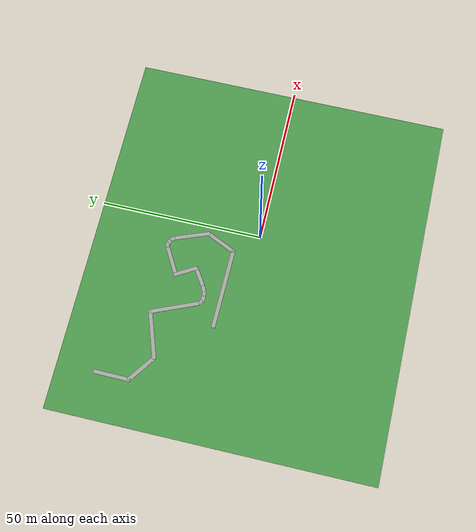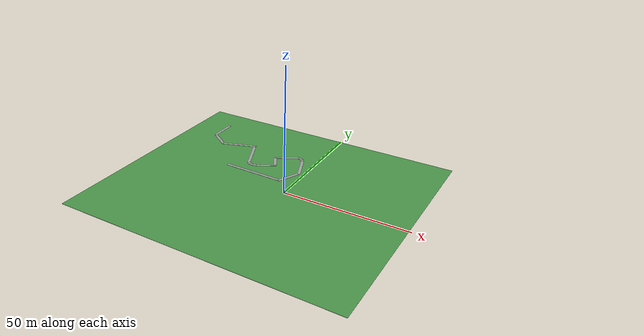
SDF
<?xml version="1.0" ?>
<sdf version="1.8">
  <world name="campus_sidewalk">

    <!-- 1. SIMULATION PHYSICS & SYSTEM PLUGINS     -->
    <physics name="1ms" type="ignored">
      <max_step_size>0.001</max_step_size>
      <real_time_factor>1.0</real_time_factor>
    </physics>

    <plugin filename="ignition-gazebo-physics-system" name="ignition::gazebo::systems::Physics"/>
    <plugin filename="ignition-gazebo-user-commands-system" name="ignition::gazebo::systems::UserCommands"/>
    <plugin filename="ignition-gazebo-scene-broadcaster-system" name="ignition::gazebo::systems::SceneBroadcaster"/>
    <plugin filename="ignition-gazebo-sensors-system" name="ignition::gazebo::systems::Sensors">
      <render_engine>ogre2</render_engine>
    </plugin>

    <!-- 2. LIGHTING & SUN                          -->
    <light type="directional" name="sun">
      <cast_shadows>true</cast_shadows>
      <pose>0 0 10 0 0 0</pose>
      <diffuse>0.8 0.8 0.8 1</diffuse>
      <specular>0.2 0.2 0.2 1</specular>
      <attenuation>
        <range>1000</range>
        <constant>0.9</constant>
        <linear>0.01</linear>
        <quadratic>0.001</quadratic>
      </attenuation>
      <direction>-0.5 0.1 -0.9</direction>
    </light>

    <!-- 3. GRASS MODEL                             -->
    <model name="grass_network">
      <static>true</static>

      <link name="grass_patch_0">
        <pose>-8.0000 0.5000 0.0 0 0 0</pose>
        <collision name="col">
          <pose>0 0 -0.0500 0 0 0</pose>
          <geometry>
            <box><size>114.0000 99.0000 0.1000</size></box>
          </geometry>
        </collision>
        <visual name="vis">
          <pose>0 0 -0.0500 0 0 0</pose>
          <geometry>
            <box><size>114.0000 99.0000 0.1000</size></box>
          </geometry>
          <material>
            <ambient>0.3 0.6 0.3 1</ambient>
            <diffuse>0.3 0.6 0.3 1</diffuse>
          </material>
          <plugin filename="ignition-gazebo-label-system" name="ignition::gazebo::systems::Label">
            <label>2</label> <!-- 2 = Grass -->
          </plugin>
        </visual>
      </link>
    </model>

    <!-- 4. SIDEWALK NETWORK                        -->
    <model name="sidewalk_network">
      <static>true</static>

      <!-- Segment 0: Length 11.23m, Width 1.20m, Height 0.05m -->
      <link name="segment_0">
        <pose>-51.2347 38.7840 0.0 0 0 -1.5791</pose>
        <collision name="col">
          <pose>5.6151 0 0.0250 0 0 0</pose>
          <geometry>
            <box><size>11.2301 1.2000 0.0500</size></box>
          </geometry>
        </collision>
        <visual name="vis">
          <pose>5.6151 0 0.0250 0 0 0</pose>
          <geometry>
            <box><size>11.2301 1.2000 0.0500</size></box>
          </geometry>
          <material>
            <ambient>0.65 0.65 0.65 1</ambient>
            <diffuse>0.65 0.65 0.65 1</diffuse>
          </material>
          <plugin filename="ignition-gazebo-label-system" name="ignition::gazebo::systems::Label">
            <label>1</label> <!-- 1 = Sidewalk -->
          </plugin>
        </visual>
      </link>

      <!-- Segment 1: Length 10.16m, Width 1.20m, Height 0.05m -->
      <link name="segment_1">
        <pose>-51.4732 28.0747 0.0 0 0 -0.6190</pose>
        <collision name="col">
          <pose>5.0804 0 0.0250 0 0 0</pose>
          <geometry>
            <box><size>10.1608 1.2000 0.0500</size></box>
          </geometry>
        </collision>
        <visual name="vis">
          <pose>5.0804 0 0.0250 0 0 0</pose>
          <geometry>
            <box><size>10.1608 1.2000 0.0500</size></box>
          </geometry>
          <material>
            <ambient>0.65 0.65 0.65 1</ambient>
            <diffuse>0.65 0.65 0.65 1</diffuse>
          </material>
          <plugin filename="ignition-gazebo-label-system" name="ignition::gazebo::systems::Label">
            <label>1</label> <!-- 1 = Sidewalk -->
          </plugin>
        </visual>
      </link>

      <!-- Segment 2: Length 15.12m, Width 1.20m, Height 0.05m -->
      <link name="segment_2">
        <pose>-29.5287 27.3002 0.0 0 0 -2.8040</pose>
        <collision name="col">
          <pose>7.5617 0 0.0250 0 0 0</pose>
          <geometry>
            <box><size>15.1234 1.2000 0.0500</size></box>
          </geometry>
        </collision>
        <visual name="vis">
          <pose>7.5617 0 0.0250 0 0 0</pose>
          <geometry>
            <box><size>15.1234 1.2000 0.0500</size></box>
          </geometry>
          <material>
            <ambient>0.65 0.65 0.65 1</ambient>
            <diffuse>0.65 0.65 0.65 1</diffuse>
          </material>
          <plugin filename="ignition-gazebo-label-system" name="ignition::gazebo::systems::Label">
            <label>1</label> <!-- 1 = Sidewalk -->
          </plugin>
        </visual>
      </link>

      <!-- Segment 3: Length 15.52m, Width 1.20m, Height 0.05m -->
      <link name="segment_3">
        <pose>-24.2951 13.2537 0.0 0 0 1.9683</pose>
        <collision name="col">
          <pose>7.7622 0 0.0250 0 0 0</pose>
          <geometry>
            <box><size>15.5245 1.2000 0.0500</size></box>
          </geometry>
        </collision>
        <visual name="vis">
          <pose>7.7622 0 0.0250 0 0 0</pose>
          <geometry>
            <box><size>15.5245 1.2000 0.0500</size></box>
          </geometry>
          <material>
            <ambient>0.65 0.65 0.65 1</ambient>
            <diffuse>0.65 0.65 0.65 1</diffuse>
          </material>
          <plugin filename="ignition-gazebo-label-system" name="ignition::gazebo::systems::Label">
            <label>1</label> <!-- 1 = Sidewalk -->
          </plugin>
        </visual>
      </link>

      <!-- Segment 4: Length 1.54m, Width 1.20m, Height 0.05m -->
      <link name="segment_4">
        <pose>-24.5245 13.5748 0.0 0 0 -0.6375</pose>
        <collision name="col">
          <pose>0.7708 0 0.0250 0 0 0</pose>
          <geometry>
            <box><size>1.5415 1.2000 0.0500</size></box>
          </geometry>
        </collision>
        <visual name="vis">
          <pose>0.7708 0 0.0250 0 0 0</pose>
          <geometry>
            <box><size>1.5415 1.2000 0.0500</size></box>
          </geometry>
          <material>
            <ambient>0.65 0.65 0.65 1</ambient>
            <diffuse>0.65 0.65 0.65 1</diffuse>
          </material>
          <plugin filename="ignition-gazebo-label-system" name="ignition::gazebo::systems::Label">
            <label>1</label> <!-- 1 = Sidewalk -->
          </plugin>
        </visual>
      </link>

      <!-- Segment 5: Length 1.76m, Width 1.20m, Height 0.05m -->
      <link name="segment_5">
        <pose>-23.5853 12.7895 0.0 0 0 -0.1308</pose>
        <collision name="col">
          <pose>0.8792 0 0.0250 0 0 0</pose>
          <geometry>
            <box><size>1.7584 1.2000 0.0500</size></box>
          </geometry>
        </collision>
        <visual name="vis">
          <pose>0.8792 0 0.0250 0 0 0</pose>
          <geometry>
            <box><size>1.7584 1.2000 0.0500</size></box>
          </geometry>
          <material>
            <ambient>0.65 0.65 0.65 1</ambient>
            <diffuse>0.65 0.65 0.65 1</diffuse>
          </material>
          <plugin filename="ignition-gazebo-label-system" name="ignition::gazebo::systems::Label">
            <label>1</label> <!-- 1 = Sidewalk -->
          </plugin>
        </visual>
      </link>

      <!-- Segment 6: Length 1.70m, Width 1.20m, Height 0.05m -->
      <link name="segment_6">
        <pose>-22.0673 12.5595 0.0 0 0 0.2054</pose>
        <collision name="col">
          <pose>0.8477 0 0.0250 0 0 0</pose>
          <geometry>
            <box><size>1.6954 1.2000 0.0500</size></box>
          </geometry>
        </collision>
        <visual name="vis">
          <pose>0.8477 0 0.0250 0 0 0</pose>
          <geometry>
            <box><size>1.6954 1.2000 0.0500</size></box>
          </geometry>
          <material>
            <ambient>0.65 0.65 0.65 1</ambient>
            <diffuse>0.65 0.65 0.65 1</diffuse>
          </material>
          <plugin filename="ignition-gazebo-label-system" name="ignition::gazebo::systems::Label">
            <label>1</label> <!-- 1 = Sidewalk -->
          </plugin>
        </visual>
      </link>

      <!-- Segment 7: Length 2.06m, Width 1.20m, Height 0.05m -->
      <link name="segment_7">
        <pose>-18.7548 13.7745 0.0 0 0 -2.6598</pose>
        <collision name="col">
          <pose>1.0302 0 0.0250 0 0 0</pose>
          <geometry>
            <box><size>2.0604 1.2000 0.0500</size></box>
          </geometry>
        </collision>
        <visual name="vis">
          <pose>1.0302 0 0.0250 0 0 0</pose>
          <geometry>
            <box><size>2.0604 1.2000 0.0500</size></box>
          </geometry>
          <material>
            <ambient>0.65 0.65 0.65 1</ambient>
            <diffuse>0.65 0.65 0.65 1</diffuse>
          </material>
          <plugin filename="ignition-gazebo-label-system" name="ignition::gazebo::systems::Label">
            <label>1</label> <!-- 1 = Sidewalk -->
          </plugin>
        </visual>
      </link>

      <!-- Segment 8: Length 6.63m, Width 1.20m, Height 0.05m -->
      <link name="segment_8">
        <pose>-18.9238 13.6554 0.0 0 0 0.5821</pose>
        <collision name="col">
          <pose>3.3161 0 0.0250 0 0 0</pose>
          <geometry>
            <box><size>6.6323 1.2000 0.0500</size></box>
          </geometry>
        </collision>
        <visual name="vis">
          <pose>3.3161 0 0.0250 0 0 0</pose>
          <geometry>
            <box><size>6.6323 1.2000 0.0500</size></box>
          </geometry>
          <material>
            <ambient>0.65 0.65 0.65 1</ambient>
            <diffuse>0.65 0.65 0.65 1</diffuse>
          </material>
          <plugin filename="ignition-gazebo-label-system" name="ignition::gazebo::systems::Label">
            <label>1</label> <!-- 1 = Sidewalk -->
          </plugin>
        </visual>
      </link>

      <!-- Segment 9: Length 7.77m, Width 1.20m, Height 0.05m -->
      <link name="segment_9">
        <pose>-13.5900 16.4559 0.0 0 0 2.0966</pose>
        <collision name="col">
          <pose>3.8849 0 0.0250 0 0 0</pose>
          <geometry>
            <box><size>7.7697 1.2000 0.0500</size></box>
          </geometry>
        </collision>
        <visual name="vis">
          <pose>3.8849 0 0.0250 0 0 0</pose>
          <geometry>
            <box><size>7.7697 1.2000 0.0500</size></box>
          </geometry>
          <material>
            <ambient>0.65 0.65 0.65 1</ambient>
            <diffuse>0.65 0.65 0.65 1</diffuse>
          </material>
          <plugin filename="ignition-gazebo-label-system" name="ignition::gazebo::systems::Label">
            <label>1</label> <!-- 1 = Sidewalk -->
          </plugin>
        </visual>
      </link>

      <!-- Segment 10: Length 10.14m, Width 1.20m, Height 0.05m -->
      <link name="segment_10">
        <pose>-17.7090 22.3377 0.0 0 0 0.5223</pose>
        <collision name="col">
          <pose>5.0713 0 0.0250 0 0 0</pose>
          <geometry>
            <box><size>10.1427 1.2000 0.0500</size></box>
          </geometry>
        </collision>
        <visual name="vis">
          <pose>5.0713 0 0.0250 0 0 0</pose>
          <geometry>
            <box><size>10.1427 1.2000 0.0500</size></box>
          </geometry>
          <material>
            <ambient>0.65 0.65 0.65 1</ambient>
            <diffuse>0.65 0.65 0.65 1</diffuse>
          </material>
          <plugin filename="ignition-gazebo-label-system" name="ignition::gazebo::systems::Label">
            <label>1</label> <!-- 1 = Sidewalk -->
          </plugin>
        </visual>
      </link>

      <!-- Segment 11: Length 1.50m, Width 1.20m, Height 0.05m -->
      <link name="segment_11">
        <pose>-9.3141 27.3125 0.0 0 0 -0.0189</pose>
        <collision name="col">
          <pose>0.7492 0 0.0250 0 0 0</pose>
          <geometry>
            <box><size>1.4984 1.2000 0.0500</size></box>
          </geometry>
        </collision>
        <visual name="vis">
          <pose>0.7492 0 0.0250 0 0 0</pose>
          <geometry>
            <box><size>1.4984 1.2000 0.0500</size></box>
          </geometry>
          <material>
            <ambient>0.65 0.65 0.65 1</ambient>
            <diffuse>0.65 0.65 0.65 1</diffuse>
          </material>
          <plugin filename="ignition-gazebo-label-system" name="ignition::gazebo::systems::Label">
            <label>1</label> <!-- 1 = Sidewalk -->
          </plugin>
        </visual>
      </link>

      <!-- Segment 12: Length 1.58m, Width 1.20m, Height 0.05m -->
      <link name="segment_12">
        <pose>-8.0987 27.3408 0.0 0 0 -0.4237</pose>
        <collision name="col">
          <pose>0.7907 0 0.0250 0 0 0</pose>
          <geometry>
            <box><size>1.5814 1.2000 0.0500</size></box>
          </geometry>
        </collision>
        <visual name="vis">
          <pose>0.7907 0 0.0250 0 0 0</pose>
          <geometry>
            <box><size>1.5814 1.2000 0.0500</size></box>
          </geometry>
          <material>
            <ambient>0.65 0.65 0.65 1</ambient>
            <diffuse>0.65 0.65 0.65 1</diffuse>
          </material>
          <plugin filename="ignition-gazebo-label-system" name="ignition::gazebo::systems::Label">
            <label>1</label> <!-- 1 = Sidewalk -->
          </plugin>
        </visual>
      </link>

      <!-- Segment 13: Length 1.98m, Width 1.20m, Height 0.05m -->
      <link name="segment_13">
        <pose>-6.9680 26.9733 0.0 0 0 -0.9472</pose>
        <collision name="col">
          <pose>0.9923 0 0.0250 0 0 0</pose>
          <geometry>
            <box><size>1.9846 1.2000 0.0500</size></box>
          </geometry>
        </collision>
        <visual name="vis">
          <pose>0.9923 0 0.0250 0 0 0</pose>
          <geometry>
            <box><size>1.9846 1.2000 0.0500</size></box>
          </geometry>
          <material>
            <ambient>0.65 0.65 0.65 1</ambient>
            <diffuse>0.65 0.65 0.65 1</diffuse>
          </material>
          <plugin filename="ignition-gazebo-label-system" name="ignition::gazebo::systems::Label">
            <label>1</label> <!-- 1 = Sidewalk -->
          </plugin>
        </visual>
      </link>

      <!-- Segment 14: Length 10.86m, Width 1.20m, Height 0.05m -->
      <link name="segment_14">
        <pose>-5.9787 25.7014 0.0 0 0 -1.2062</pose>
        <collision name="col">
          <pose>5.4306 0 0.0250 0 0 0</pose>
          <geometry>
            <box><size>10.8612 1.2000 0.0500</size></box>
          </geometry>
        </collision>
        <visual name="vis">
          <pose>5.4306 0 0.0250 0 0 0</pose>
          <geometry>
            <box><size>10.8612 1.2000 0.0500</size></box>
          </geometry>
          <material>
            <ambient>0.65 0.65 0.65 1</ambient>
            <diffuse>0.65 0.65 0.65 1</diffuse>
          </material>
          <plugin filename="ignition-gazebo-label-system" name="ignition::gazebo::systems::Label">
            <label>1</label> <!-- 1 = Sidewalk -->
          </plugin>
        </visual>
      </link>

      <!-- Segment 15: Length 10.18m, Width 1.20m, Height 0.05m -->
      <link name="segment_15">
        <pose>-2.1251 16.1369 0.0 0 0 -2.0023</pose>
        <collision name="col">
          <pose>5.0877 0 0.0250 0 0 0</pose>
          <geometry>
            <box><size>10.1753 1.2000 0.0500</size></box>
          </geometry>
        </collision>
        <visual name="vis">
          <pose>5.0877 0 0.0250 0 0 0</pose>
          <geometry>
            <box><size>10.1753 1.2000 0.0500</size></box>
          </geometry>
          <material>
            <ambient>0.65 0.65 0.65 1</ambient>
            <diffuse>0.65 0.65 0.65 1</diffuse>
          </material>
          <plugin filename="ignition-gazebo-label-system" name="ignition::gazebo::systems::Label">
            <label>1</label> <!-- 1 = Sidewalk -->
          </plugin>
        </visual>
      </link>

      <!-- Segment 16: Length 24.98m, Width 1.20m, Height 0.05m -->
      <link name="segment_16">
        <pose>-5.7398 7.2273 0.0 0 0 3.1263</pose>
        <collision name="col">
          <pose>12.4900 0 0.0250 0 0 0</pose>
          <geometry>
            <box><size>24.9800 1.2000 0.0500</size></box>
          </geometry>
        </collision>
        <visual name="vis">
          <pose>12.4900 0 0.0250 0 0 0</pose>
          <geometry>
            <box><size>24.9800 1.2000 0.0500</size></box>
          </geometry>
          <material>
            <ambient>0.65 0.65 0.65 1</ambient>
            <diffuse>0.65 0.65 0.65 1</diffuse>
          </material>
          <plugin filename="ignition-gazebo-label-system" name="ignition::gazebo::systems::Label">
            <label>1</label> <!-- 1 = Sidewalk -->
          </plugin>
        </visual>
      </link>
    </model>

    <!-- 5. PREDEFINED SPAWN POINTS                 -->
    <!-- Waypoint: waypoint_1 -->
    <frame name="waypoint_1">
      <pose>-51.2559 38.0575 0.1000 0.0000 0.0000 -1.5708</pose>
    </frame>

    <!-- Waypoint: waypoint_2 -->
    <frame name="waypoint_2">
      <pose>-33.7747 25.8097 0.1000 0.0000 0.0000 0.2756</pose>
    </frame>

    <!-- Waypoint: waypoint_3 -->
    <frame name="waypoint_3">
      <pose>-15.0941 18.8432 0.1000 0.0000 0.0000 2.0966</pose>
    </frame>

  </world>
</sdf>
